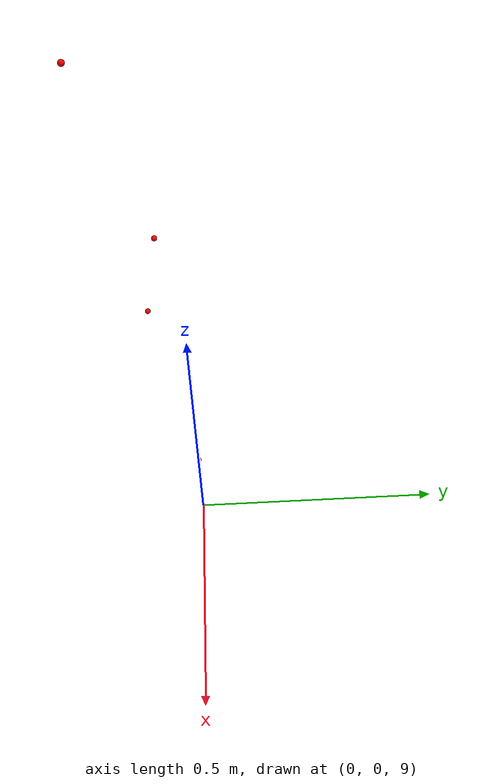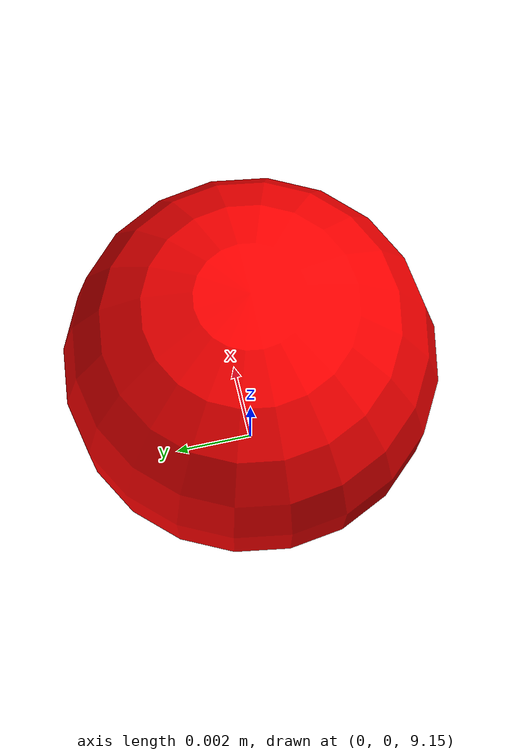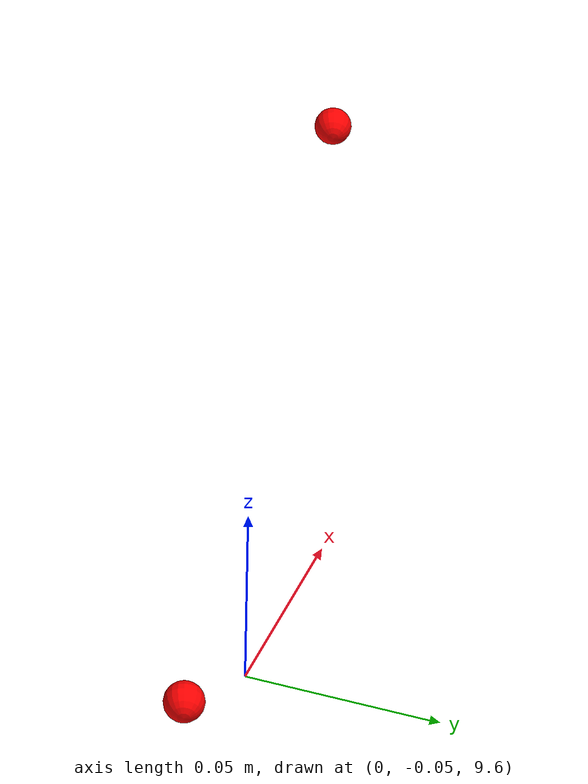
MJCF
<mujoco model="rizon4s">
  <compiler angle="radian" />

  <default>
    <default class="rizon4s">
      <default class="visual">
        <geom type="mesh" contype="0" conaffinity="0" group="2" />
      </default>
      <default class="collision">
        <geom group="3" />
        <default class="finger_collision">
          <geom type="box" solimp="0 1 0.001 0.02 3" solref="0.001 1" friction="2 0.05 0.05" />
        </default>
      </default>
    </default>
    <default class="joint">
      <geom contype="0" conaffinity="0" />
      <joint damping="0.60" frictionloss="0.052" armature="0.028" />
      <position kp="200" dampratio="1.0" />
    </default>
  </default>

  <worldbody>
    <body name="base" pos="0 0 09" childclass="rizon4s">
      <geom type="cylinder" size="0.002 0.06" rgba="1 0 0 1" pos="0.06 0.0 0.0" euler="0 1.57079 0" class="visual" />
      <geom type="cylinder" size="0.002 0.06" rgba="0 1 0 1" pos="0.0 0.06 0.0" euler="1.57079 0 0" class="visual" />
      <geom type="cylinder" size="0.002 0.06" rgba="0 0 1 1" pos="0.0 0.0 0.06" euler="0 0 0" class="visual" />

      <inertial pos="0.0030905 -0.00024462 0.029293" mass="3.8" diaginertia="0.02 0.02 0.02" />

      <body name="link1" pos="0 0 0.155" quat="0 0 0 -1">
        <site name="link1_Site" pos="0.0 0 0.0" rgba="1 0 0 1" />
        <inertial pos="0 0 0.15" mass="3.6" diaginertia="0.015 0.015 0.008" />
        <joint name="joint1" pos="0 0 0" axis="0 0 1" range="-2.8798 2.8798" actuatorfrcrange="-123 123" class="joint" />

        <body name="link2" pos="0 0.03 0.21">
          <inertial pos="0 0.04 0.1" mass="2.7" diaginertia="0.01 0.01 0.005" />
          <joint name="joint2" pos="0 0 0" axis="0 1 0" range="-2.3562 2.3562" actuatorfrcrange="-123 123" class="joint" />

          <body name="link3" pos="0 0.035 0.205">
            <site name="link3_Site" pos="0.0 0. 0.0182778" rgba="1 0 0 1" />
            <inertial pos="-0.01 0 0.14" mass="2.4" diaginertia="0.008 0.008 0.003" />
            <joint name="joint3" pos="0 0 0" axis="0 0 1" range="-3.0543 3.0543" actuatorfrcrange="-64 64" class="joint" />

            <body name="link4" pos="-0.02 -0.03 0.19" quat="0 0 0 -1">
              <site name="link4_Site" pos="0.0 0 0.0182778" rgba="1 0 0 1" />
              <inertial pos="-0.01 0.03 0.1" mass="2.4" diaginertia="0.008 0.008 0.003" />
              <joint name="joint4" pos="0 0 0" axis="0 1 0" range="-1.9548 2.7751" actuatorfrcrange="-64 64" class="joint" />

              <body name="link5" pos="-0.02 0.025 0.195" quat="0 0 0 -1">
                <inertial pos="0 0 0.14" mass="2.3" diaginertia="0.008 0.008 0.003" />
                <joint name="joint5" pos="0 0 0" axis="0 0 1" range="-3.0543 3.0543" actuatorfrcrange="-39 39" class="joint" />

                <body name="link6" pos="0 0.03 0.19">
                  <inertial pos="0.02 0.06 0.07" mass="2.2" diaginertia="0.008 0.008 0.005" />
                  <joint name="joint6" pos="0 0 0" axis="0 1 0" range="-1.4835 4.6251" actuatorfrcrange="-39 39" class="joint" />

                  <body name="link7" pos="-0.015 0.073 0.11" quat="0.707107 0 -0.707107 0">
                    <inertial pos="0 0 0.1" mass="1.4" diaginertia="0.004 0.004 0.002" />
                    <joint name="joint7" pos="0 0 0" axis="0 0 1" range="-3.0543 3.0543" actuatorfrcrange="-39 39" class="joint" />
                    <site name="EE" size="0.005" pos="0.0 0.0 0.2" euler="3.1415926 0 0" rgba="1 0 0 1" />
                  </body>
                </body>
              </body>
            </body>
          </body>
        </body>
      </body>
    </body>
  </worldbody>

  <actuator>
    <position name="joint1" joint="joint1" class="joint" kp="10000" dampratio="1.0" ctrlrange="-2.8798 2.8798" />
    <position name="joint2" joint="joint2" class="joint" kp="10000" dampratio="1.0" ctrlrange="-2.3562 2.3562" />
    <position name="joint3" joint="joint3" class="joint" kp="6000" dampratio="1.0" ctrlrange="-3.0543 3.0543" />
    <position name="joint4" joint="joint4" class="joint" kp="2000" dampratio="1.0" ctrlrange="-1.9548 2.7751" />
    <position name="joint5" joint="joint5" class="joint" kp="500" dampratio="1.0" ctrlrange="-3.0543 3.0543" />
    <position name="joint6" joint="joint6" class="joint" kp="500" dampratio="1.0" ctrlrange="-1.4835 4.6251" />
    <position name="joint7" joint="joint7" class="joint" kp="500" dampratio="1.0" ctrlrange="-3.0543 3.0543" />
  </actuator>

  <keyframe>
    <key name="home" qpos="0 0 0 0 0 0 0" ctrl="0 0 0 0 0 0 0" />
    <key name="standby1" qpos="0 0 0 1.57079 0 0 0" ctrl="0 0 0 1.57079 0 0 0" />
    <key name="standby2" qpos="0 -0.7854 0 1.57079 0 0.7854 0" ctrl="0 -0.7854 0 1.57079 0 0.7854 0" />
  </keyframe>

</mujoco>
